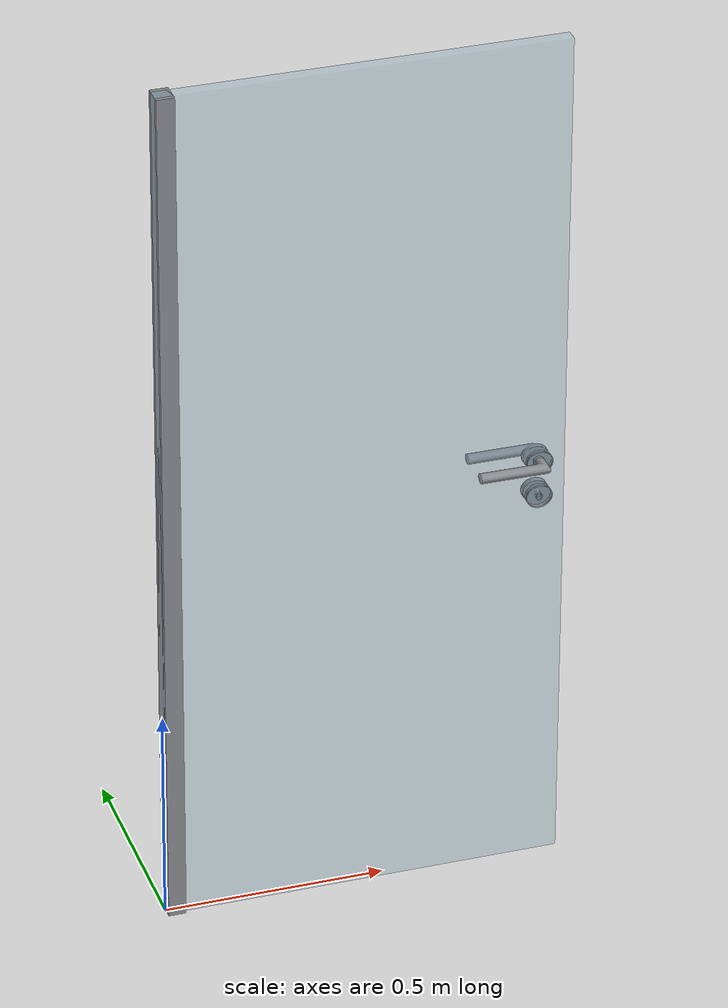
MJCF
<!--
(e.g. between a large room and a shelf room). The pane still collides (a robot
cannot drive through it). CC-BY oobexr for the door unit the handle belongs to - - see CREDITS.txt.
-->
<mujoco model="door_glass">
  <compiler meshdir="meshes" texturedir="meshes"/>
  <asset>
    <mesh name="door_pane" file="door_pane.obj"/>
    <mesh name="door_handle" file="door_handle.obj"/>
    <material name="door_glass" rgba="0.55 0.72 0.80 0.35" specular="0.8" shininess="0.9"/>
    <material name="door_chrome" rgba="0.55 0.56 0.58 1" specular="0.6" shininess="0.6"/>
  </asset>
  <worldbody>
    <body name="leaf">
      <geom type="mesh" mesh="door_pane" material="door_glass"/>
      <!-- hinge-side rail: a slim chrome mullion at the hinge edge, connecting the pane to the frame -->
      <geom type="box" size="0.02 0.025 1.0" pos="0.02 0.0 1.0" material="door_chrome"/>
      <geom type="mesh" mesh="door_handle" material="door_chrome" contype="0" conaffinity="0"/>
    </body>
  </worldbody>
</mujoco>
